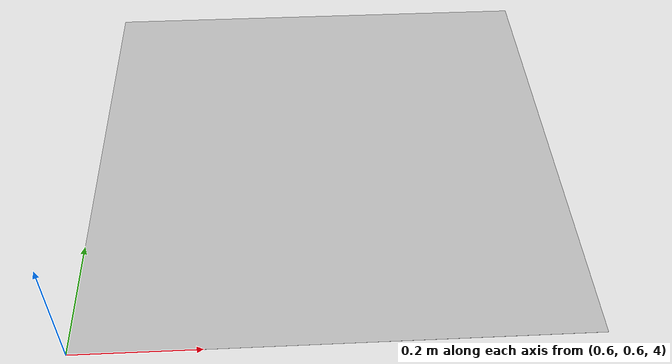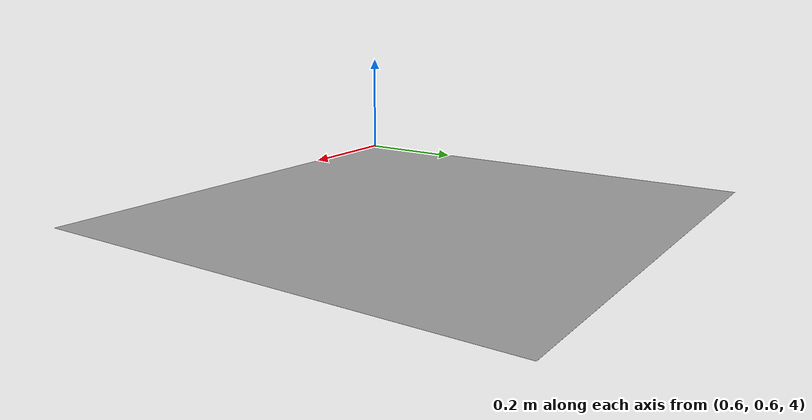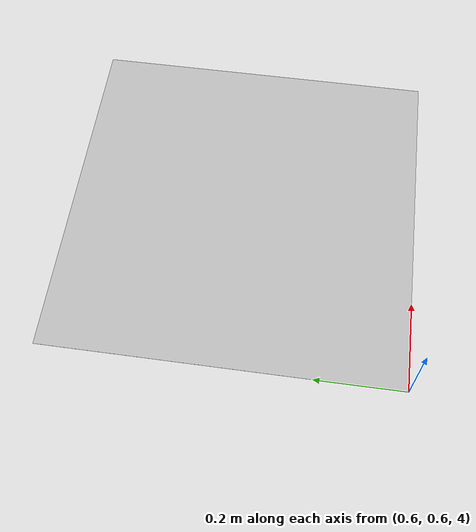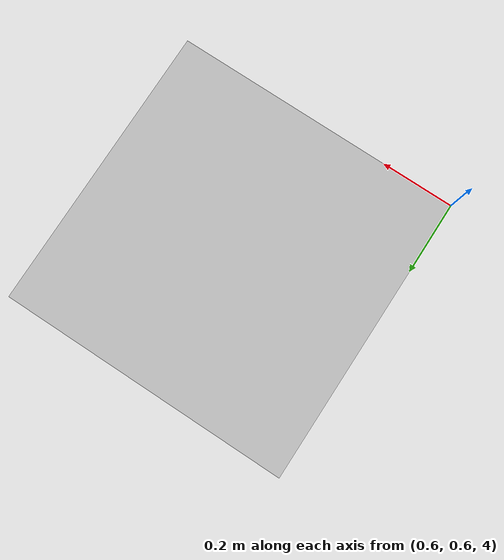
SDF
<?xml version="1.0"?>
<sdf version="1.6">
  <model name="aruco_marker">

    <link name="marker">
      <pose>1 1 4 0 -1.57 0</pose>
      <inertial>
        <mass>0.001</mass>
        <inertia>
          <ixx>3.7499999999999997e-06</ixx>
          <ixy>0.0</ixy>
          <ixz>0.0</ixz>
          <iyy>1.8750008333333333e-06</iyy>
          <iyz>0.0</iyz>
          <izz>1.8750008333333333e-06</izz>
        </inertia>
      </inertial>
      <visual name="front_visual">
        <geometry>
          <box>
            <size>0.0001 0.8 0.8</size>
          </box>
        </geometry>
        <material>
          <script>
            <uri>model://aruco_marker/materials/scripts</uri>
            <uri>model://aruco_marker/materials/textures</uri>
            <name>Marker</name>
          </script>
        </material>
      </visual>
      <!-- Hide the marker from the back -->
      <visual name="rear_visual">
        <pose>-0.00005 0 0 0 0 0</pose>
        <geometry>
          <box>
            <size>0.0001 0.8 0.8</size>
          </box>
        </geometry>
      </visual>
      <collision name="collision">
        <geometry>
          <box>
            <size>0.0001 0.8 0.8</size>
          </box>
        </geometry>
      </collision>
    </link>

    <static>1</static>
    <allow_auto_disable>1</allow_auto_disable>
  </model>
</sdf>
